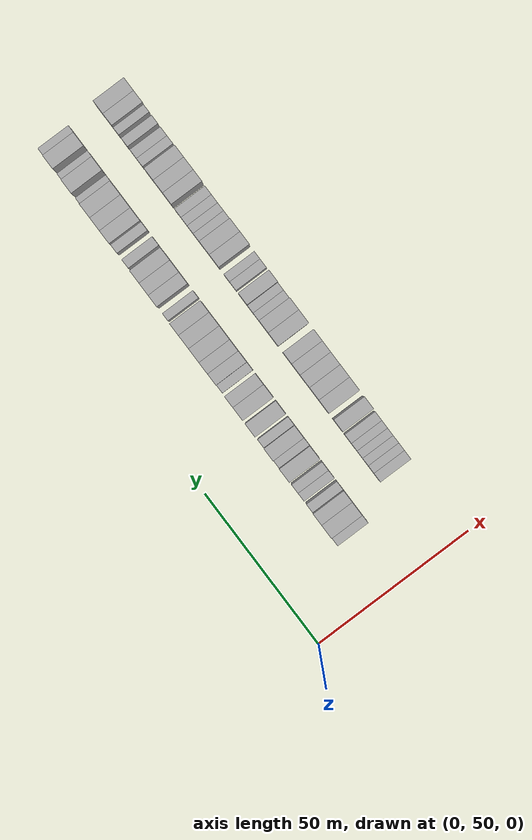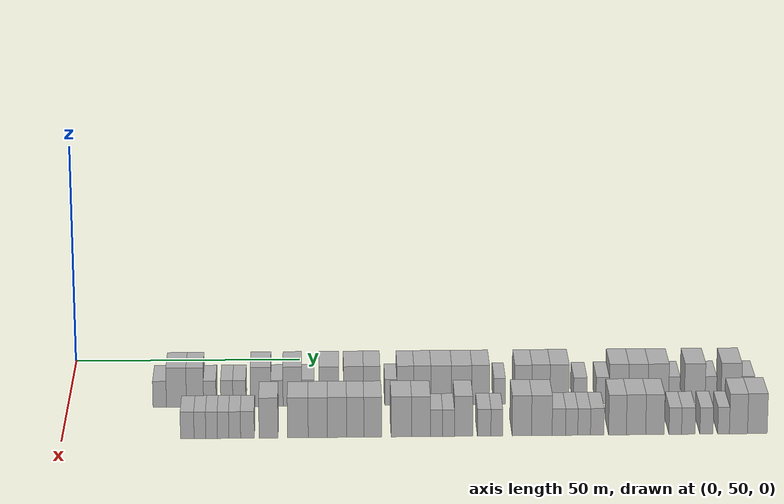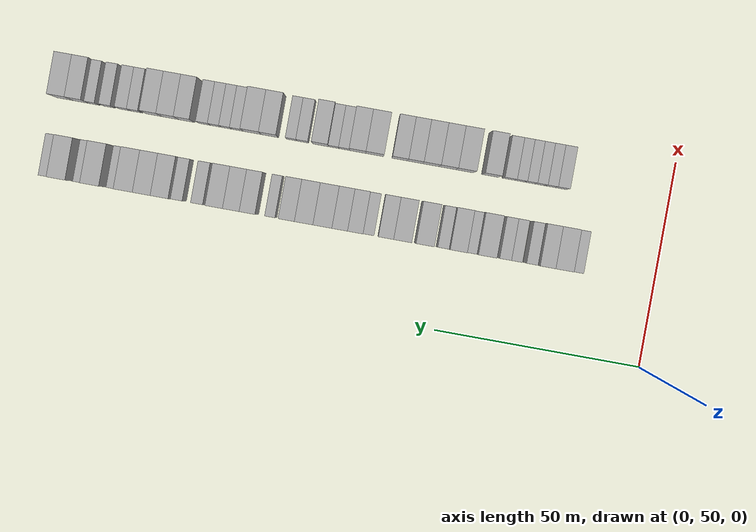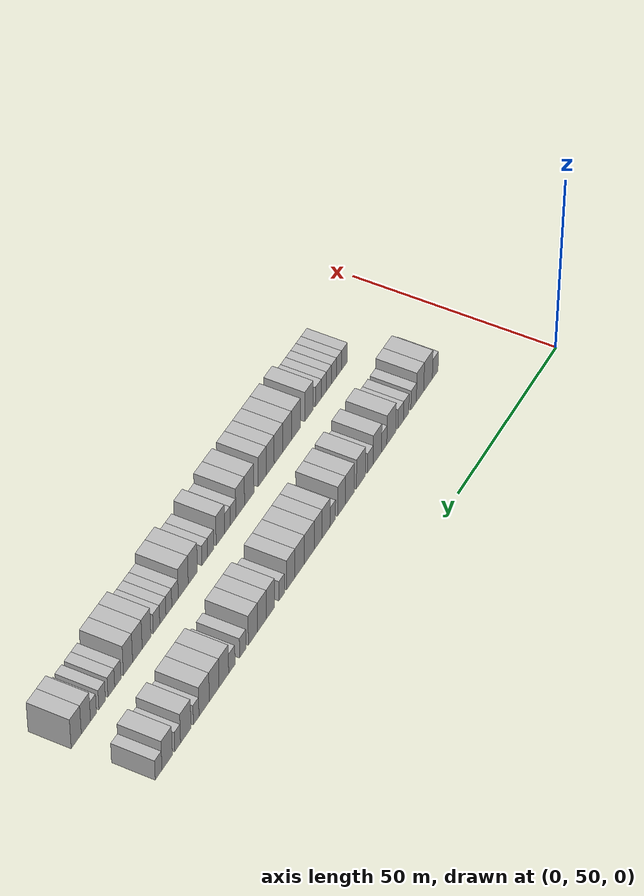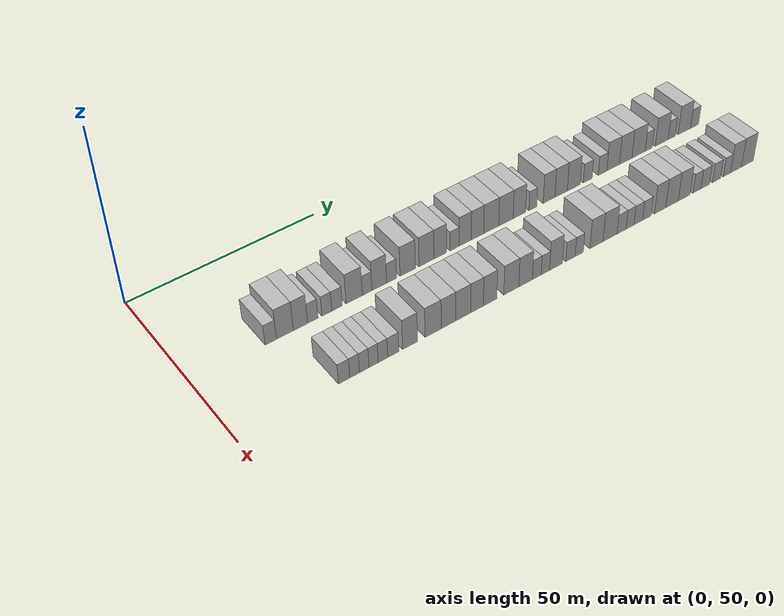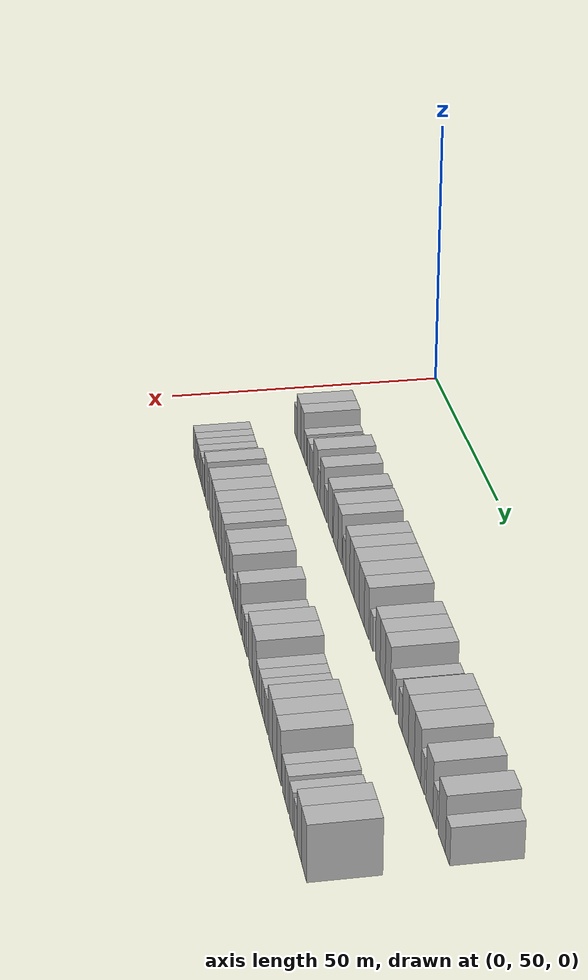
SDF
<sdf version="1.6">
 <world name="default">
  <model name="building_63">
   <static>1</static>
   <pose>25.0000 69.8792 0 0.000000 0.000000 0.000000</pose>
   <link name="link">
    <pose>0 0 3.00 0 0 0</pose>
    <collision name="collision"><geometry><box><size>10.0000 2.9027 6.0000</size></box></geometry></collision>
    <visual name="visual">
     <cast_shadows>0</cast_shadows>
     <geometry><box><size>10.0000 2.9027 6.0000</size></box></geometry>
     <material>
      <script>
       <uri>model://HANNAS_wall/materials/scripts</uri>
       <uri>model://HANNAS_wall/materials/textures</uri>
       <name>vrc/HANNAS_wall</name>
      </script>
     </material>
    </visual>
   </link>
  </model>
  <model name="building_64">
   <static>1</static>
   <pose>25.0000 73.4892 0 0.000000 0.000000 0.000000</pose>
   <link name="link">
    <pose>0 0 4.50 0 0 0</pose>
    <collision name="collision"><geometry><box><size>10.0000 4.3174 9.0000</size></box></geometry></collision>
    <visual name="visual">
     <cast_shadows>0</cast_shadows>
     <geometry><box><size>10.0000 4.3174 9.0000</size></box></geometry>
     <material>
      <script>
       <uri>model://HANNAS_wall/materials/scripts</uri>
       <uri>model://HANNAS_wall/materials/textures</uri>
       <name>vrc/HANNAS_wall</name>
      </script>
     </material>
    </visual>
   </link>
  </model>
  <model name="building_65">
   <static>1</static>
   <pose>25.0000 77.4937 0 0.000000 0.000000 0.000000</pose>
   <link name="link">
    <pose>0 0 4.50 0 0 0</pose>
    <collision name="collision"><geometry><box><size>10.0000 3.6916 9.0000</size></box></geometry></collision>
    <visual name="visual">
     <cast_shadows>0</cast_shadows>
     <geometry><box><size>10.0000 3.6916 9.0000</size></box></geometry>
     <material>
      <script>
       <uri>model://HANNAS_wall/materials/scripts</uri>
       <uri>model://HANNAS_wall/materials/textures</uri>
       <name>vrc/HANNAS_wall</name>
      </script>
     </material>
    </visual>
   </link>
  </model>
  <model name="building_66">
   <static>1</static>
   <pose>25.0000 80.7050 0 0.000000 0.000000 0.000000</pose>
   <link name="link">
    <pose>0 0 3.00 0 0 0</pose>
    <collision name="collision"><geometry><box><size>10.0000 2.7310 6.0000</size></box></geometry></collision>
    <visual name="visual">
     <cast_shadows>0</cast_shadows>
     <geometry><box><size>10.0000 2.7310 6.0000</size></box></geometry>
     <material>
      <script>
       <uri>model://HANNAS_wall/materials/scripts</uri>
       <uri>model://HANNAS_wall/materials/textures</uri>
       <name>vrc/HANNAS_wall</name>
      </script>
     </material>
    </visual>
   </link>
  </model>
  <model name="building_67">
   <static>1</static>
   <pose>25.0000 84.3754 0 0.000000 0.000000 0.000000</pose>
   <link name="link">
    <pose>0 0 3.00 0 0 0</pose>
    <collision name="collision"><geometry><box><size>10.0000 2.6097 6.0000</size></box></geometry></collision>
    <visual name="visual">
     <cast_shadows>0</cast_shadows>
     <geometry><box><size>10.0000 2.6097 6.0000</size></box></geometry>
     <material>
      <script>
       <uri>model://HANNAS_wall/materials/scripts</uri>
       <uri>model://HANNAS_wall/materials/textures</uri>
       <name>vrc/HANNAS_wall</name>
      </script>
     </material>
    </visual>
   </link>
  </model>
  <model name="building_68">
   <static>1</static>
   <pose>25.0000 87.0911 0 0.000000 0.000000 0.000000</pose>
   <link name="link">
    <pose>0 0 3.00 0 0 0</pose>
    <collision name="collision"><geometry><box><size>10.0000 2.8218 6.0000</size></box></geometry></collision>
    <visual name="visual">
     <cast_shadows>0</cast_shadows>
     <geometry><box><size>10.0000 2.8218 6.0000</size></box></geometry>
     <material>
      <script>
       <uri>model://HANNAS_wall/materials/scripts</uri>
       <uri>model://HANNAS_wall/materials/textures</uri>
       <name>vrc/HANNAS_wall</name>
      </script>
     </material>
    </visual>
   </link>
  </model>
  <model name="building_69">
   <static>1</static>
   <pose>25.0000 91.7001 0 0.000000 0.000000 0.000000</pose>
   <link name="link">
    <pose>0 0 4.50 0 0 0</pose>
    <collision name="collision"><geometry><box><size>10.0000 4.3962 9.0000</size></box></geometry></collision>
    <visual name="visual">
     <cast_shadows>0</cast_shadows>
     <geometry><box><size>10.0000 4.3962 9.0000</size></box></geometry>
     <material>
      <script>
       <uri>model://HANNAS_wall/materials/scripts</uri>
       <uri>model://HANNAS_wall/materials/textures</uri>
       <name>vrc/HANNAS_wall</name>
      </script>
     </material>
    </visual>
   </link>
  </model>
  <model name="building_70">
   <static>1</static>
   <pose>25.0000 95.2078 0 0.000000 0.000000 0.000000</pose>
   <link name="link">
    <pose>0 0 3.00 0 0 0</pose>
    <collision name="collision"><geometry><box><size>10.0000 2.6192 6.0000</size></box></geometry></collision>
    <visual name="visual">
     <cast_shadows>0</cast_shadows>
     <geometry><box><size>10.0000 2.6192 6.0000</size></box></geometry>
     <material>
      <script>
       <uri>model://HANNAS_wall/materials/scripts</uri>
       <uri>model://HANNAS_wall/materials/textures</uri>
       <name>vrc/HANNAS_wall</name>
      </script>
     </material>
    </visual>
   </link>
  </model>
  <model name="building_71">
   <static>1</static>
   <pose>25.0000 98.5383 0 0.000000 0.000000 0.000000</pose>
   <link name="link">
    <pose>0 0 4.50 0 0 0</pose>
    <collision name="collision"><geometry><box><size>10.0000 4.0419 9.0000</size></box></geometry></collision>
    <visual name="visual">
     <cast_shadows>0</cast_shadows>
     <geometry><box><size>10.0000 4.0419 9.0000</size></box></geometry>
     <material>
      <script>
       <uri>model://HANNAS_wall/materials/scripts</uri>
       <uri>model://HANNAS_wall/materials/textures</uri>
       <name>vrc/HANNAS_wall</name>
      </script>
     </material>
    </visual>
   </link>
  </model>
  <model name="building_72">
   <static>1</static>
   <pose>25.0000 101.9215 0 0.000000 0.000000 0.000000</pose>
   <link name="link">
    <pose>0 0 3.00 0 0 0</pose>
    <collision name="collision"><geometry><box><size>10.0000 2.7244 6.0000</size></box></geometry></collision>
    <visual name="visual">
     <cast_shadows>0</cast_shadows>
     <geometry><box><size>10.0000 2.7244 6.0000</size></box></geometry>
     <material>
      <script>
       <uri>model://HANNAS_wall/materials/scripts</uri>
       <uri>model://HANNAS_wall/materials/textures</uri>
       <name>vrc/HANNAS_wall</name>
      </script>
     </material>
    </visual>
   </link>
  </model>
  <model name="building_73">
   <static>1</static>
   <pose>25.0000 106.4539 0 0.000000 0.000000 0.000000</pose>
   <link name="link">
    <pose>0 0 4.50 0 0 0</pose>
    <collision name="collision"><geometry><box><size>10.0000 4.3405 9.0000</size></box></geometry></collision>
    <visual name="visual">
     <cast_shadows>0</cast_shadows>
     <geometry><box><size>10.0000 4.3405 9.0000</size></box></geometry>
     <material>
      <script>
       <uri>model://HANNAS_wall/materials/scripts</uri>
       <uri>model://HANNAS_wall/materials/textures</uri>
       <name>vrc/HANNAS_wall</name>
      </script>
     </material>
    </visual>
   </link>
  </model>
  <model name="building_74">
   <static>1</static>
   <pose>25.0000 111.7643 0 0.000000 0.000000 0.000000</pose>
   <link name="link">
    <pose>0 0 4.50 0 0 0</pose>
    <collision name="collision"><geometry><box><size>10.0000 4.2802 9.0000</size></box></geometry></collision>
    <visual name="visual">
     <cast_shadows>0</cast_shadows>
     <geometry><box><size>10.0000 4.2802 9.0000</size></box></geometry>
     <material>
      <script>
       <uri>model://HANNAS_wall/materials/scripts</uri>
       <uri>model://HANNAS_wall/materials/textures</uri>
       <name>vrc/HANNAS_wall</name>
      </script>
     </material>
    </visual>
   </link>
  </model>
  <model name="building_75">
   <static>1</static>
   <pose>25.0000 115.7084 0 0.000000 0.000000 0.000000</pose>
   <link name="link">
    <pose>0 0 4.50 0 0 0</pose>
    <collision name="collision"><geometry><box><size>10.0000 3.6080 9.0000</size></box></geometry></collision>
    <visual name="visual">
     <cast_shadows>0</cast_shadows>
     <geometry><box><size>10.0000 3.6080 9.0000</size></box></geometry>
     <material>
      <script>
       <uri>model://HANNAS_wall/materials/scripts</uri>
       <uri>model://HANNAS_wall/materials/textures</uri>
       <name>vrc/HANNAS_wall</name>
      </script>
     </material>
    </visual>
   </link>
  </model>
  <model name="building_76">
   <static>1</static>
   <pose>25.0000 119.8274 0 0.000000 0.000000 0.000000</pose>
   <link name="link">
    <pose>0 0 3.00 0 0 0</pose>
    <collision name="collision"><geometry><box><size>10.0000 2.6301 6.0000</size></box></geometry></collision>
    <visual name="visual">
     <cast_shadows>0</cast_shadows>
     <geometry><box><size>10.0000 2.6301 6.0000</size></box></geometry>
     <material>
      <script>
       <uri>model://HANNAS_wall/materials/scripts</uri>
       <uri>model://HANNAS_wall/materials/textures</uri>
       <name>vrc/HANNAS_wall</name>
      </script>
     </material>
    </visual>
   </link>
  </model>
  <model name="building_77">
   <static>1</static>
   <pose>25.0000 122.9669 0 0.000000 0.000000 0.000000</pose>
   <link name="link">
    <pose>0 0 4.50 0 0 0</pose>
    <collision name="collision"><geometry><box><size>10.0000 3.6490 9.0000</size></box></geometry></collision>
    <visual name="visual">
     <cast_shadows>0</cast_shadows>
     <geometry><box><size>10.0000 3.6490 9.0000</size></box></geometry>
     <material>
      <script>
       <uri>model://HANNAS_wall/materials/scripts</uri>
       <uri>model://HANNAS_wall/materials/textures</uri>
       <name>vrc/HANNAS_wall</name>
      </script>
     </material>
    </visual>
   </link>
  </model>
  <model name="building_78">
   <static>1</static>
   <pose>25.0000 126.6446 0 0.000000 0.000000 0.000000</pose>
   <link name="link">
    <pose>0 0 4.50 0 0 0</pose>
    <collision name="collision"><geometry><box><size>10.0000 3.7064 9.0000</size></box></geometry></collision>
    <visual name="visual">
     <cast_shadows>0</cast_shadows>
     <geometry><box><size>10.0000 3.7064 9.0000</size></box></geometry>
     <material>
      <script>
       <uri>model://HANNAS_wall/materials/scripts</uri>
       <uri>model://HANNAS_wall/materials/textures</uri>
       <name>vrc/HANNAS_wall</name>
      </script>
     </material>
    </visual>
   </link>
  </model>
  <model name="building_79">
   <static>1</static>
   <pose>25.0000 130.7377 0 0.000000 0.000000 0.000000</pose>
   <link name="link">
    <pose>0 0 4.50 0 0 0</pose>
    <collision name="collision"><geometry><box><size>10.0000 4.4798 9.0000</size></box></geometry></collision>
    <visual name="visual">
     <cast_shadows>0</cast_shadows>
     <geometry><box><size>10.0000 4.4798 9.0000</size></box></geometry>
     <material>
      <script>
       <uri>model://HANNAS_wall/materials/scripts</uri>
       <uri>model://HANNAS_wall/materials/textures</uri>
       <name>vrc/HANNAS_wall</name>
      </script>
     </material>
    </visual>
   </link>
  </model>
  <model name="building_80">
   <static>1</static>
   <pose>25.0000 135.1602 0 0.000000 0.000000 0.000000</pose>
   <link name="link">
    <pose>0 0 4.50 0 0 0</pose>
    <collision name="collision"><geometry><box><size>10.0000 4.3652 9.0000</size></box></geometry></collision>
    <visual name="visual">
     <cast_shadows>0</cast_shadows>
     <geometry><box><size>10.0000 4.3652 9.0000</size></box></geometry>
     <material>
      <script>
       <uri>model://HANNAS_wall/materials/scripts</uri>
       <uri>model://HANNAS_wall/materials/textures</uri>
       <name>vrc/HANNAS_wall</name>
      </script>
     </material>
    </visual>
   </link>
  </model>
  <model name="building_81">
   <static>1</static>
   <pose>25.0000 139.2603 0 0.000000 0.000000 0.000000</pose>
   <link name="link">
    <pose>0 0 4.50 0 0 0</pose>
    <collision name="collision"><geometry><box><size>10.0000 3.8349 9.0000</size></box></geometry></collision>
    <visual name="visual">
     <cast_shadows>0</cast_shadows>
     <geometry><box><size>10.0000 3.8349 9.0000</size></box></geometry>
     <material>
      <script>
       <uri>model://HANNAS_wall/materials/scripts</uri>
       <uri>model://HANNAS_wall/materials/textures</uri>
       <name>vrc/HANNAS_wall</name>
      </script>
     </material>
    </visual>
   </link>
  </model>
  <model name="building_82">
   <static>1</static>
   <pose>25.0000 143.4101 0 0.000000 0.000000 0.000000</pose>
   <link name="link">
    <pose>0 0 3.00 0 0 0</pose>
    <collision name="collision"><geometry><box><size>10.0000 2.4648 6.0000</size></box></geometry></collision>
    <visual name="visual">
     <cast_shadows>0</cast_shadows>
     <geometry><box><size>10.0000 2.4648 6.0000</size></box></geometry>
     <material>
      <script>
       <uri>model://HANNAS_wall/materials/scripts</uri>
       <uri>model://HANNAS_wall/materials/textures</uri>
       <name>vrc/HANNAS_wall</name>
      </script>
     </material>
    </visual>
   </link>
  </model>
  <model name="building_83">
   <static>1</static>
   <pose>25.0000 148.5066 0 0.000000 0.000000 0.000000</pose>
   <link name="link">
    <pose>0 0 4.50 0 0 0</pose>
    <collision name="collision"><geometry><box><size>10.0000 3.7282 9.0000</size></box></geometry></collision>
    <visual name="visual">
     <cast_shadows>0</cast_shadows>
     <geometry><box><size>10.0000 3.7282 9.0000</size></box></geometry>
     <material>
      <script>
       <uri>model://HANNAS_wall/materials/scripts</uri>
       <uri>model://HANNAS_wall/materials/textures</uri>
       <name>vrc/HANNAS_wall</name>
      </script>
     </material>
    </visual>
   </link>
  </model>
  <model name="building_84">
   <static>1</static>
   <pose>25.0000 152.3388 0 0.000000 0.000000 0.000000</pose>
   <link name="link">
    <pose>0 0 4.50 0 0 0</pose>
    <collision name="collision"><geometry><box><size>10.0000 3.9362 9.0000</size></box></geometry></collision>
    <visual name="visual">
     <cast_shadows>0</cast_shadows>
     <geometry><box><size>10.0000 3.9362 9.0000</size></box></geometry>
     <material>
      <script>
       <uri>model://HANNAS_wall/materials/scripts</uri>
       <uri>model://HANNAS_wall/materials/textures</uri>
       <name>vrc/HANNAS_wall</name>
      </script>
     </material>
    </visual>
   </link>
  </model>
  <model name="building_85">
   <static>1</static>
   <pose>25.0000 156.3679 0 0.000000 0.000000 0.000000</pose>
   <link name="link">
    <pose>0 0 4.50 0 0 0</pose>
    <collision name="collision"><geometry><box><size>10.0000 4.1219 9.0000</size></box></geometry></collision>
    <visual name="visual">
     <cast_shadows>0</cast_shadows>
     <geometry><box><size>10.0000 4.1219 9.0000</size></box></geometry>
     <material>
      <script>
       <uri>model://HANNAS_wall/materials/scripts</uri>
       <uri>model://HANNAS_wall/materials/textures</uri>
       <name>vrc/HANNAS_wall</name>
      </script>
     </material>
    </visual>
   </link>
  </model>
  <model name="building_86">
   <static>1</static>
   <pose>25.0000 160.8740 0 0.000000 0.000000 0.000000</pose>
   <link name="link">
    <pose>0 0 3.00 0 0 0</pose>
    <collision name="collision"><geometry><box><size>10.0000 2.8903 6.0000</size></box></geometry></collision>
    <visual name="visual">
     <cast_shadows>0</cast_shadows>
     <geometry><box><size>10.0000 2.8903 6.0000</size></box></geometry>
     <material>
      <script>
       <uri>model://HANNAS_wall/materials/scripts</uri>
       <uri>model://HANNAS_wall/materials/textures</uri>
       <name>vrc/HANNAS_wall</name>
      </script>
     </material>
    </visual>
   </link>
  </model>
  <model name="building_87">
   <static>1</static>
   <pose>25.0000 165.7291 0 0.000000 0.000000 0.000000</pose>
   <link name="link">
    <pose>0 0 3.00 0 0 0</pose>
    <collision name="collision"><geometry><box><size>10.0000 2.8199 6.0000</size></box></geometry></collision>
    <visual name="visual">
     <cast_shadows>0</cast_shadows>
     <geometry><box><size>10.0000 2.8199 6.0000</size></box></geometry>
     <material>
      <script>
       <uri>model://HANNAS_wall/materials/scripts</uri>
       <uri>model://HANNAS_wall/materials/textures</uri>
       <name>vrc/HANNAS_wall</name>
      </script>
     </material>
    </visual>
   </link>
  </model>
  <model name="building_88">
   <static>1</static>
   <pose>25.0000 169.2475 0 0.000000 0.000000 0.000000</pose>
   <link name="link">
    <pose>0 0 4.50 0 0 0</pose>
    <collision name="collision"><geometry><box><size>10.0000 4.2169 9.0000</size></box></geometry></collision>
    <visual name="visual">
     <cast_shadows>0</cast_shadows>
     <geometry><box><size>10.0000 4.2169 9.0000</size></box></geometry>
     <material>
      <script>
       <uri>model://HANNAS_wall/materials/scripts</uri>
       <uri>model://HANNAS_wall/materials/textures</uri>
       <name>vrc/HANNAS_wall</name>
      </script>
     </material>
    </visual>
   </link>
  </model>
  <model name="building_89">
   <static>1</static>
   <pose>25.0000 173.4647 0 0.000000 0.000000 0.000000</pose>
   <link name="link">
    <pose>0 0 4.50 0 0 0</pose>
    <collision name="collision"><geometry><box><size>10.0000 4.2175 9.0000</size></box></geometry></collision>
    <visual name="visual">
     <cast_shadows>0</cast_shadows>
     <geometry><box><size>10.0000 4.2175 9.0000</size></box></geometry>
     <material>
      <script>
       <uri>model://HANNAS_wall/materials/scripts</uri>
       <uri>model://HANNAS_wall/materials/textures</uri>
       <name>vrc/HANNAS_wall</name>
      </script>
     </material>
    </visual>
   </link>
  </model>
  <model name="building_90">
   <static>1</static>
   <pose>25.0000 177.8209 0 0.000000 0.000000 0.000000</pose>
   <link name="link">
    <pose>0 0 4.50 0 0 0</pose>
    <collision name="collision"><geometry><box><size>10.0000 4.4949 9.0000</size></box></geometry></collision>
    <visual name="visual">
     <cast_shadows>0</cast_shadows>
     <geometry><box><size>10.0000 4.4949 9.0000</size></box></geometry>
     <material>
      <script>
       <uri>model://HANNAS_wall/materials/scripts</uri>
       <uri>model://HANNAS_wall/materials/textures</uri>
       <name>vrc/HANNAS_wall</name>
      </script>
     </material>
    </visual>
   </link>
  </model>
  <model name="building_91">
   <static>1</static>
   <pose>25.0000 181.2804 0 0.000000 0.000000 0.000000</pose>
   <link name="link">
    <pose>0 0 3.00 0 0 0</pose>
    <collision name="collision"><geometry><box><size>10.0000 2.4240 6.0000</size></box></geometry></collision>
    <visual name="visual">
     <cast_shadows>0</cast_shadows>
     <geometry><box><size>10.0000 2.4240 6.0000</size></box></geometry>
     <material>
      <script>
       <uri>model://HANNAS_wall/materials/scripts</uri>
       <uri>model://HANNAS_wall/materials/textures</uri>
       <name>vrc/HANNAS_wall</name>
      </script>
     </material>
    </visual>
   </link>
  </model>
  <model name="building_92">
   <static>1</static>
   <pose>25.0000 185.7398 0 0.000000 0.000000 0.000000</pose>
   <link name="link">
    <pose>0 0 4.50 0 0 0</pose>
    <collision name="collision"><geometry><box><size>10.0000 4.4948 9.0000</size></box></geometry></collision>
    <visual name="visual">
     <cast_shadows>0</cast_shadows>
     <geometry><box><size>10.0000 4.4948 9.0000</size></box></geometry>
     <material>
      <script>
       <uri>model://HANNAS_wall/materials/scripts</uri>
       <uri>model://HANNAS_wall/materials/textures</uri>
       <name>vrc/HANNAS_wall</name>
      </script>
     </material>
    </visual>
   </link>
  </model>
  <model name="building_93">
   <static>1</static>
   <pose>25.0000 189.2189 0 0.000000 0.000000 0.000000</pose>
   <link name="link">
    <pose>0 0 3.00 0 0 0</pose>
    <collision name="collision"><geometry><box><size>10.0000 2.4633 6.0000</size></box></geometry></collision>
    <visual name="visual">
     <cast_shadows>0</cast_shadows>
     <geometry><box><size>10.0000 2.4633 6.0000</size></box></geometry>
     <material>
      <script>
       <uri>model://HANNAS_wall/materials/scripts</uri>
       <uri>model://HANNAS_wall/materials/textures</uri>
       <name>vrc/HANNAS_wall</name>
      </script>
     </material>
    </visual>
   </link>
  </model>
  <model name="building_94">
   <static>1</static>
   <pose>25.0000 193.6626 0 0.000000 0.000000 0.000000</pose>
   <link name="link">
    <pose>0 0 4.50 0 0 0</pose>
    <collision name="collision"><geometry><box><size>10.0000 4.4239 9.0000</size></box></geometry></collision>
    <visual name="visual">
     <cast_shadows>0</cast_shadows>
     <geometry><box><size>10.0000 4.4239 9.0000</size></box></geometry>
     <material>
      <script>
       <uri>model://HANNAS_wall/materials/scripts</uri>
       <uri>model://HANNAS_wall/materials/textures</uri>
       <name>vrc/HANNAS_wall</name>
      </script>
     </material>
    </visual>
   </link>
  </model>
  <model name="building_95">
   <static>1</static>
   <pose>25.0000 197.2921 0 0.000000 0.000000 0.000000</pose>
   <link name="link">
    <pose>0 0 3.00 0 0 0</pose>
    <collision name="collision"><geometry><box><size>10.0000 2.8352 6.0000</size></box></geometry></collision>
    <visual name="visual">
     <cast_shadows>0</cast_shadows>
     <geometry><box><size>10.0000 2.8352 6.0000</size></box></geometry>
     <material>
      <script>
       <uri>model://HANNAS_wall/materials/scripts</uri>
       <uri>model://HANNAS_wall/materials/textures</uri>
       <name>vrc/HANNAS_wall</name>
      </script>
     </material>
    </visual>
   </link>
  </model>
  <model name="building_166">
   <static>1</static>
   <pose>44.0000 76.4689 0 0.000000 0.000000 0.000000</pose>
   <link name="link">
    <pose>0 0 3.00 0 0 0</pose>
    <collision name="collision"><geometry><box><size>10.0000 2.8658 6.0000</size></box></geometry></collision>
    <visual name="visual">
     <cast_shadows>0</cast_shadows>
     <geometry><box><size>10.0000 2.8658 6.0000</size></box></geometry>
     <material>
      <script>
       <uri>model://HANNAS_wall/materials/scripts</uri>
       <uri>model://HANNAS_wall/materials/textures</uri>
       <name>vrc/HANNAS_wall</name>
      </script>
     </material>
    </visual>
   </link>
  </model>
  <model name="building_167">
   <static>1</static>
   <pose>44.0000 79.1362 0 0.000000 0.000000 0.000000</pose>
   <link name="link">
    <pose>0 0 3.00 0 0 0</pose>
    <collision name="collision"><geometry><box><size>10.0000 2.4688 6.0000</size></box></geometry></collision>
    <visual name="visual">
     <cast_shadows>0</cast_shadows>
     <geometry><box><size>10.0000 2.4688 6.0000</size></box></geometry>
     <material>
      <script>
       <uri>model://HANNAS_wall/materials/scripts</uri>
       <uri>model://HANNAS_wall/materials/textures</uri>
       <name>vrc/HANNAS_wall</name>
      </script>
     </material>
    </visual>
   </link>
  </model>
  <model name="building_168">
   <static>1</static>
   <pose>44.0000 81.5983 0 0.000000 0.000000 0.000000</pose>
   <link name="link">
    <pose>0 0 3.00 0 0 0</pose>
    <collision name="collision"><geometry><box><size>10.0000 2.4554 6.0000</size></box></geometry></collision>
    <visual name="visual">
     <cast_shadows>0</cast_shadows>
     <geometry><box><size>10.0000 2.4554 6.0000</size></box></geometry>
     <material>
      <script>
       <uri>model://HANNAS_wall/materials/scripts</uri>
       <uri>model://HANNAS_wall/materials/textures</uri>
       <name>vrc/HANNAS_wall</name>
      </script>
     </material>
    </visual>
   </link>
  </model>
  <model name="building_169">
   <static>1</static>
   <pose>44.0000 84.0331 0 0.000000 0.000000 0.000000</pose>
   <link name="link">
    <pose>0 0 3.00 0 0 0</pose>
    <collision name="collision"><geometry><box><size>10.0000 2.4142 6.0000</size></box></geometry></collision>
    <visual name="visual">
     <cast_shadows>0</cast_shadows>
     <geometry><box><size>10.0000 2.4142 6.0000</size></box></geometry>
     <material>
      <script>
       <uri>model://HANNAS_wall/materials/scripts</uri>
       <uri>model://HANNAS_wall/materials/textures</uri>
       <name>vrc/HANNAS_wall</name>
      </script>
     </material>
    </visual>
   </link>
  </model>
  <model name="building_170">
   <static>1</static>
   <pose>44.0000 86.4778 0 0.000000 0.000000 0.000000</pose>
   <link name="link">
    <pose>0 0 3.00 0 0 0</pose>
    <collision name="collision"><geometry><box><size>10.0000 2.4751 6.0000</size></box></geometry></collision>
    <visual name="visual">
     <cast_shadows>0</cast_shadows>
     <geometry><box><size>10.0000 2.4751 6.0000</size></box></geometry>
     <material>
      <script>
       <uri>model://HANNAS_wall/materials/scripts</uri>
       <uri>model://HANNAS_wall/materials/textures</uri>
       <name>vrc/HANNAS_wall</name>
      </script>
     </material>
    </visual>
   </link>
  </model>
  <model name="building_171">
   <static>1</static>
   <pose>44.0000 89.1673 0 0.000000 0.000000 0.000000</pose>
   <link name="link">
    <pose>0 0 3.00 0 0 0</pose>
    <collision name="collision"><geometry><box><size>10.0000 2.9038 6.0000</size></box></geometry></collision>
    <visual name="visual">
     <cast_shadows>0</cast_shadows>
     <geometry><box><size>10.0000 2.9038 6.0000</size></box></geometry>
     <material>
      <script>
       <uri>model://HANNAS_wall/materials/scripts</uri>
       <uri>model://HANNAS_wall/materials/textures</uri>
       <name>vrc/HANNAS_wall</name>
      </script>
     </material>
    </visual>
   </link>
  </model>
  <model name="building_172">
   <static>1</static>
   <pose>44.0000 93.6262 0 0.000000 0.000000 0.000000</pose>
   <link name="link">
    <pose>0 0 4.50 0 0 0</pose>
    <collision name="collision"><geometry><box><size>10.0000 4.0139 9.0000</size></box></geometry></collision>
    <visual name="visual">
     <cast_shadows>0</cast_shadows>
     <geometry><box><size>10.0000 4.0139 9.0000</size></box></geometry>
     <material>
      <script>
       <uri>model://HANNAS_wall/materials/scripts</uri>
       <uri>model://HANNAS_wall/materials/textures</uri>
       <name>vrc/HANNAS_wall</name>
      </script>
     </material>
    </visual>
   </link>
  </model>
  <model name="building_173">
   <static>1</static>
   <pose>44.0000 99.8161 0 0.000000 0.000000 0.000000</pose>
   <link name="link">
    <pose>0 0 4.50 0 0 0</pose>
    <collision name="collision"><geometry><box><size>10.0000 4.3659 9.0000</size></box></geometry></collision>
    <visual name="visual">
     <cast_shadows>0</cast_shadows>
     <geometry><box><size>10.0000 4.3659 9.0000</size></box></geometry>
     <material>
      <script>
       <uri>model://HANNAS_wall/materials/scripts</uri>
       <uri>model://HANNAS_wall/materials/textures</uri>
       <name>vrc/HANNAS_wall</name>
      </script>
     </material>
    </visual>
   </link>
  </model>
  <model name="building_174">
   <static>1</static>
   <pose>44.0000 104.0305 0 0.000000 0.000000 0.000000</pose>
   <link name="link">
    <pose>0 0 4.50 0 0 0</pose>
    <collision name="collision"><geometry><box><size>10.0000 4.0630 9.0000</size></box></geometry></collision>
    <visual name="visual">
     <cast_shadows>0</cast_shadows>
     <geometry><box><size>10.0000 4.0630 9.0000</size></box></geometry>
     <material>
      <script>
       <uri>model://HANNAS_wall/materials/scripts</uri>
       <uri>model://HANNAS_wall/materials/textures</uri>
       <name>vrc/HANNAS_wall</name>
      </script>
     </material>
    </visual>
   </link>
  </model>
  <model name="building_175">
   <static>1</static>
   <pose>44.0000 108.0966 0 0.000000 0.000000 0.000000</pose>
   <link name="link">
    <pose>0 0 4.50 0 0 0</pose>
    <collision name="collision"><geometry><box><size>10.0000 4.0691 9.0000</size></box></geometry></collision>
    <visual name="visual">
     <cast_shadows>0</cast_shadows>
     <geometry><box><size>10.0000 4.0691 9.0000</size></box></geometry>
     <material>
      <script>
       <uri>model://HANNAS_wall/materials/scripts</uri>
       <uri>model://HANNAS_wall/materials/textures</uri>
       <name>vrc/HANNAS_wall</name>
      </script>
     </material>
    </visual>
   </link>
  </model>
  <model name="building_176">
   <static>1</static>
   <pose>44.0000 111.9435 0 0.000000 0.000000 0.000000</pose>
   <link name="link">
    <pose>0 0 4.50 0 0 0</pose>
    <collision name="collision"><geometry><box><size>10.0000 3.6248 9.0000</size></box></geometry></collision>
    <visual name="visual">
     <cast_shadows>0</cast_shadows>
     <geometry><box><size>10.0000 3.6248 9.0000</size></box></geometry>
     <material>
      <script>
       <uri>model://HANNAS_wall/materials/scripts</uri>
       <uri>model://HANNAS_wall/materials/textures</uri>
       <name>vrc/HANNAS_wall</name>
      </script>
     </material>
    </visual>
   </link>
  </model>
  <model name="building_177">
   <static>1</static>
   <pose>44.0000 115.6422 0 0.000000 0.000000 0.000000</pose>
   <link name="link">
    <pose>0 0 4.50 0 0 0</pose>
    <collision name="collision"><geometry><box><size>10.0000 3.7725 9.0000</size></box></geometry></collision>
    <visual name="visual">
     <cast_shadows>0</cast_shadows>
     <geometry><box><size>10.0000 3.7725 9.0000</size></box></geometry>
     <material>
      <script>
       <uri>model://HANNAS_wall/materials/scripts</uri>
       <uri>model://HANNAS_wall/materials/textures</uri>
       <name>vrc/HANNAS_wall</name>
      </script>
     </material>
    </visual>
   </link>
  </model>
  <model name="building_178">
   <static>1</static>
   <pose>44.0000 121.6931 0 0.000000 0.000000 0.000000</pose>
   <link name="link">
    <pose>0 0 4.50 0 0 0</pose>
    <collision name="collision"><geometry><box><size>10.0000 4.3293 9.0000</size></box></geometry></collision>
    <visual name="visual">
     <cast_shadows>0</cast_shadows>
     <geometry><box><size>10.0000 4.3293 9.0000</size></box></geometry>
     <material>
      <script>
       <uri>model://HANNAS_wall/materials/scripts</uri>
       <uri>model://HANNAS_wall/materials/textures</uri>
       <name>vrc/HANNAS_wall</name>
      </script>
     </material>
    </visual>
   </link>
  </model>
  <model name="building_179">
   <static>1</static>
   <pose>44.0000 125.8486 0 0.000000 0.000000 0.000000</pose>
   <link name="link">
    <pose>0 0 4.50 0 0 0</pose>
    <collision name="collision"><geometry><box><size>10.0000 3.9816 9.0000</size></box></geometry></collision>
    <visual name="visual">
     <cast_shadows>0</cast_shadows>
     <geometry><box><size>10.0000 3.9816 9.0000</size></box></geometry>
     <material>
      <script>
       <uri>model://HANNAS_wall/materials/scripts</uri>
       <uri>model://HANNAS_wall/materials/textures</uri>
       <name>vrc/HANNAS_wall</name>
      </script>
     </material>
    </visual>
   </link>
  </model>
  <model name="building_180">
   <static>1</static>
   <pose>44.0000 129.1274 0 0.000000 0.000000 0.000000</pose>
   <link name="link">
    <pose>0 0 3.00 0 0 0</pose>
    <collision name="collision"><geometry><box><size>10.0000 2.5760 6.0000</size></box></geometry></collision>
    <visual name="visual">
     <cast_shadows>0</cast_shadows>
     <geometry><box><size>10.0000 2.5760 6.0000</size></box></geometry>
     <material>
      <script>
       <uri>model://HANNAS_wall/materials/scripts</uri>
       <uri>model://HANNAS_wall/materials/textures</uri>
       <name>vrc/HANNAS_wall</name>
      </script>
     </material>
    </visual>
   </link>
  </model>
  <model name="building_181">
   <static>1</static>
   <pose>44.0000 131.6710 0 0.000000 0.000000 0.000000</pose>
   <link name="link">
    <pose>0 0 3.00 0 0 0</pose>
    <collision name="collision"><geometry><box><size>10.0000 2.5113 6.0000</size></box></geometry></collision>
    <visual name="visual">
     <cast_shadows>0</cast_shadows>
     <geometry><box><size>10.0000 2.5113 6.0000</size></box></geometry>
     <material>
      <script>
       <uri>model://HANNAS_wall/materials/scripts</uri>
       <uri>model://HANNAS_wall/materials/textures</uri>
       <name>vrc/HANNAS_wall</name>
      </script>
     </material>
    </visual>
   </link>
  </model>
  <model name="building_182">
   <static>1</static>
   <pose>44.0000 134.8578 0 0.000000 0.000000 0.000000</pose>
   <link name="link">
    <pose>0 0 4.50 0 0 0</pose>
    <collision name="collision"><geometry><box><size>10.0000 3.8623 9.0000</size></box></geometry></collision>
    <visual name="visual">
     <cast_shadows>0</cast_shadows>
     <geometry><box><size>10.0000 3.8623 9.0000</size></box></geometry>
     <material>
      <script>
       <uri>model://HANNAS_wall/materials/scripts</uri>
       <uri>model://HANNAS_wall/materials/textures</uri>
       <name>vrc/HANNAS_wall</name>
      </script>
     </material>
    </visual>
   </link>
  </model>
  <model name="building_183">
   <static>1</static>
   <pose>44.0000 139.2197 0 0.000000 0.000000 0.000000</pose>
   <link name="link">
    <pose>0 0 3.00 0 0 0</pose>
    <collision name="collision"><geometry><box><size>10.0000 2.8614 6.0000</size></box></geometry></collision>
    <visual name="visual">
     <cast_shadows>0</cast_shadows>
     <geometry><box><size>10.0000 2.8614 6.0000</size></box></geometry>
     <material>
      <script>
       <uri>model://HANNAS_wall/materials/scripts</uri>
       <uri>model://HANNAS_wall/materials/textures</uri>
       <name>vrc/HANNAS_wall</name>
      </script>
     </material>
    </visual>
   </link>
  </model>
  <model name="building_184">
   <static>1</static>
   <pose>44.0000 141.9015 0 0.000000 0.000000 0.000000</pose>
   <link name="link">
    <pose>0 0 3.00 0 0 0</pose>
    <collision name="collision"><geometry><box><size>10.0000 2.5022 6.0000</size></box></geometry></collision>
    <visual name="visual">
     <cast_shadows>0</cast_shadows>
     <geometry><box><size>10.0000 2.5022 6.0000</size></box></geometry>
     <material>
      <script>
       <uri>model://HANNAS_wall/materials/scripts</uri>
       <uri>model://HANNAS_wall/materials/textures</uri>
       <name>vrc/HANNAS_wall</name>
      </script>
     </material>
    </visual>
   </link>
  </model>
  <model name="building_185">
   <static>1</static>
   <pose>44.0000 147.2065 0 0.000000 0.000000 0.000000</pose>
   <link name="link">
    <pose>0 0 4.50 0 0 0</pose>
    <collision name="collision"><geometry><box><size>10.0000 4.1077 9.0000</size></box></geometry></collision>
    <visual name="visual">
     <cast_shadows>0</cast_shadows>
     <geometry><box><size>10.0000 4.1077 9.0000</size></box></geometry>
     <material>
      <script>
       <uri>model://HANNAS_wall/materials/scripts</uri>
       <uri>model://HANNAS_wall/materials/textures</uri>
       <name>vrc/HANNAS_wall</name>
      </script>
     </material>
    </visual>
   </link>
  </model>
  <model name="building_186">
   <static>1</static>
   <pose>44.0000 151.4403 0 0.000000 0.000000 0.000000</pose>
   <link name="link">
    <pose>0 0 4.50 0 0 0</pose>
    <collision name="collision"><geometry><box><size>10.0000 4.3599 9.0000</size></box></geometry></collision>
    <visual name="visual">
     <cast_shadows>0</cast_shadows>
     <geometry><box><size>10.0000 4.3599 9.0000</size></box></geometry>
     <material>
      <script>
       <uri>model://HANNAS_wall/materials/scripts</uri>
       <uri>model://HANNAS_wall/materials/textures</uri>
       <name>vrc/HANNAS_wall</name>
      </script>
     </material>
    </visual>
   </link>
  </model>
  <model name="building_187">
   <static>1</static>
   <pose>44.0000 155.0505 0 0.000000 0.000000 0.000000</pose>
   <link name="link">
    <pose>0 0 3.00 0 0 0</pose>
    <collision name="collision"><geometry><box><size>10.0000 2.8606 6.0000</size></box></geometry></collision>
    <visual name="visual">
     <cast_shadows>0</cast_shadows>
     <geometry><box><size>10.0000 2.8606 6.0000</size></box></geometry>
     <material>
      <script>
       <uri>model://HANNAS_wall/materials/scripts</uri>
       <uri>model://HANNAS_wall/materials/textures</uri>
       <name>vrc/HANNAS_wall</name>
      </script>
     </material>
    </visual>
   </link>
  </model>
  <model name="building_188">
   <static>1</static>
   <pose>44.0000 157.7724 0 0.000000 0.000000 0.000000</pose>
   <link name="link">
    <pose>0 0 3.00 0 0 0</pose>
    <collision name="collision"><geometry><box><size>10.0000 2.5831 6.0000</size></box></geometry></collision>
    <visual name="visual">
     <cast_shadows>0</cast_shadows>
     <geometry><box><size>10.0000 2.5831 6.0000</size></box></geometry>
     <material>
      <script>
       <uri>model://HANNAS_wall/materials/scripts</uri>
       <uri>model://HANNAS_wall/materials/textures</uri>
       <name>vrc/HANNAS_wall</name>
      </script>
     </material>
    </visual>
   </link>
  </model>
  <model name="building_189">
   <static>1</static>
   <pose>44.0000 160.4093 0 0.000000 0.000000 0.000000</pose>
   <link name="link">
    <pose>0 0 3.00 0 0 0</pose>
    <collision name="collision"><geometry><box><size>10.0000 2.6908 6.0000</size></box></geometry></collision>
    <visual name="visual">
     <cast_shadows>0</cast_shadows>
     <geometry><box><size>10.0000 2.6908 6.0000</size></box></geometry>
     <material>
      <script>
       <uri>model://HANNAS_wall/materials/scripts</uri>
       <uri>model://HANNAS_wall/materials/textures</uri>
       <name>vrc/HANNAS_wall</name>
      </script>
     </material>
    </visual>
   </link>
  </model>
  <model name="building_190">
   <static>1</static>
   <pose>44.0000 163.1717 0 0.000000 0.000000 0.000000</pose>
   <link name="link">
    <pose>0 0 3.00 0 0 0</pose>
    <collision name="collision"><geometry><box><size>10.0000 2.8341 6.0000</size></box></geometry></collision>
    <visual name="visual">
     <cast_shadows>0</cast_shadows>
     <geometry><box><size>10.0000 2.8341 6.0000</size></box></geometry>
     <material>
      <script>
       <uri>model://HANNAS_wall/materials/scripts</uri>
       <uri>model://HANNAS_wall/materials/textures</uri>
       <name>vrc/HANNAS_wall</name>
      </script>
     </material>
    </visual>
   </link>
  </model>
  <model name="building_191">
   <static>1</static>
   <pose>44.0000 167.4701 0 0.000000 0.000000 0.000000</pose>
   <link name="link">
    <pose>0 0 4.50 0 0 0</pose>
    <collision name="collision"><geometry><box><size>10.0000 3.7626 9.0000</size></box></geometry></collision>
    <visual name="visual">
     <cast_shadows>0</cast_shadows>
     <geometry><box><size>10.0000 3.7626 9.0000</size></box></geometry>
     <material>
      <script>
       <uri>model://HANNAS_wall/materials/scripts</uri>
       <uri>model://HANNAS_wall/materials/textures</uri>
       <name>vrc/HANNAS_wall</name>
      </script>
     </material>
    </visual>
   </link>
  </model>
  <model name="building_192">
   <static>1</static>
   <pose>44.0000 171.4041 0 0.000000 0.000000 0.000000</pose>
   <link name="link">
    <pose>0 0 4.50 0 0 0</pose>
    <collision name="collision"><geometry><box><size>10.0000 4.1055 9.0000</size></box></geometry></collision>
    <visual name="visual">
     <cast_shadows>0</cast_shadows>
     <geometry><box><size>10.0000 4.1055 9.0000</size></box></geometry>
     <material>
      <script>
       <uri>model://HANNAS_wall/materials/scripts</uri>
       <uri>model://HANNAS_wall/materials/textures</uri>
       <name>vrc/HANNAS_wall</name>
      </script>
     </material>
    </visual>
   </link>
  </model>
  <model name="building_193">
   <static>1</static>
   <pose>44.0000 175.4291 0 0.000000 0.000000 0.000000</pose>
   <link name="link">
    <pose>0 0 4.50 0 0 0</pose>
    <collision name="collision"><geometry><box><size>10.0000 3.9446 9.0000</size></box></geometry></collision>
    <visual name="visual">
     <cast_shadows>0</cast_shadows>
     <geometry><box><size>10.0000 3.9446 9.0000</size></box></geometry>
     <material>
      <script>
       <uri>model://HANNAS_wall/materials/scripts</uri>
       <uri>model://HANNAS_wall/materials/textures</uri>
       <name>vrc/HANNAS_wall</name>
      </script>
     </material>
    </visual>
   </link>
  </model>
  <model name="building_194">
   <static>1</static>
   <pose>44.0000 179.7388 0 0.000000 0.000000 0.000000</pose>
   <link name="link">
    <pose>0 0 3.00 0 0 0</pose>
    <collision name="collision"><geometry><box><size>10.0000 2.6748 6.0000</size></box></geometry></collision>
    <visual name="visual">
     <cast_shadows>0</cast_shadows>
     <geometry><box><size>10.0000 2.6748 6.0000</size></box></geometry>
     <material>
      <script>
       <uri>model://HANNAS_wall/materials/scripts</uri>
       <uri>model://HANNAS_wall/materials/textures</uri>
       <name>vrc/HANNAS_wall</name>
      </script>
     </material>
    </visual>
   </link>
  </model>
  <model name="building_195">
   <static>1</static>
   <pose>44.0000 182.5214 0 0.000000 0.000000 0.000000</pose>
   <link name="link">
    <pose>0 0 3.00 0 0 0</pose>
    <collision name="collision"><geometry><box><size>10.0000 2.8903 6.0000</size></box></geometry></collision>
    <visual name="visual">
     <cast_shadows>0</cast_shadows>
     <geometry><box><size>10.0000 2.8903 6.0000</size></box></geometry>
     <material>
      <script>
       <uri>model://HANNAS_wall/materials/scripts</uri>
       <uri>model://HANNAS_wall/materials/textures</uri>
       <name>vrc/HANNAS_wall</name>
      </script>
     </material>
    </visual>
   </link>
  </model>
  <model name="building_196">
   <static>1</static>
   <pose>44.0000 186.3596 0 0.000000 0.000000 0.000000</pose>
   <link name="link">
    <pose>0 0 3.00 0 0 0</pose>
    <collision name="collision"><geometry><box><size>10.0000 2.7861 6.0000</size></box></geometry></collision>
    <visual name="visual">
     <cast_shadows>0</cast_shadows>
     <geometry><box><size>10.0000 2.7861 6.0000</size></box></geometry>
     <material>
      <script>
       <uri>model://HANNAS_wall/materials/scripts</uri>
       <uri>model://HANNAS_wall/materials/textures</uri>
       <name>vrc/HANNAS_wall</name>
      </script>
     </material>
    </visual>
   </link>
  </model>
  <model name="building_197">
   <static>1</static>
   <pose>44.0000 189.9927 0 0.000000 0.000000 0.000000</pose>
   <link name="link">
    <pose>0 0 3.00 0 0 0</pose>
    <collision name="collision"><geometry><box><size>10.0000 2.4801 6.0000</size></box></geometry></collision>
    <visual name="visual">
     <cast_shadows>0</cast_shadows>
     <geometry><box><size>10.0000 2.4801 6.0000</size></box></geometry>
     <material>
      <script>
       <uri>model://HANNAS_wall/materials/scripts</uri>
       <uri>model://HANNAS_wall/materials/textures</uri>
       <name>vrc/HANNAS_wall</name>
      </script>
     </material>
    </visual>
   </link>
  </model>
  <model name="building_198">
   <static>1</static>
   <pose>44.0000 193.1554 0 0.000000 0.000000 0.000000</pose>
   <link name="link">
    <pose>0 0 4.50 0 0 0</pose>
    <collision name="collision"><geometry><box><size>10.0000 3.8452 9.0000</size></box></geometry></collision>
    <visual name="visual">
     <cast_shadows>0</cast_shadows>
     <geometry><box><size>10.0000 3.8452 9.0000</size></box></geometry>
     <material>
      <script>
       <uri>model://HANNAS_wall/materials/scripts</uri>
       <uri>model://HANNAS_wall/materials/textures</uri>
       <name>vrc/HANNAS_wall</name>
      </script>
     </material>
    </visual>
   </link>
  </model>
  <model name="building_199">
   <static>1</static>
   <pose>44.0000 197.1752 0 0.000000 0.000000 0.000000</pose>
   <link name="link">
    <pose>0 0 4.50 0 0 0</pose>
    <collision name="collision"><geometry><box><size>10.0000 4.1944 9.0000</size></box></geometry></collision>
    <visual name="visual">
     <cast_shadows>0</cast_shadows>
     <geometry><box><size>10.0000 4.1944 9.0000</size></box></geometry>
     <material>
      <script>
       <uri>model://HANNAS_wall/materials/scripts</uri>
       <uri>model://HANNAS_wall/materials/textures</uri>
       <name>vrc/HANNAS_wall</name>
      </script>
     </material>
    </visual>
   </link>
  </model>
 </world>
</sdf>
